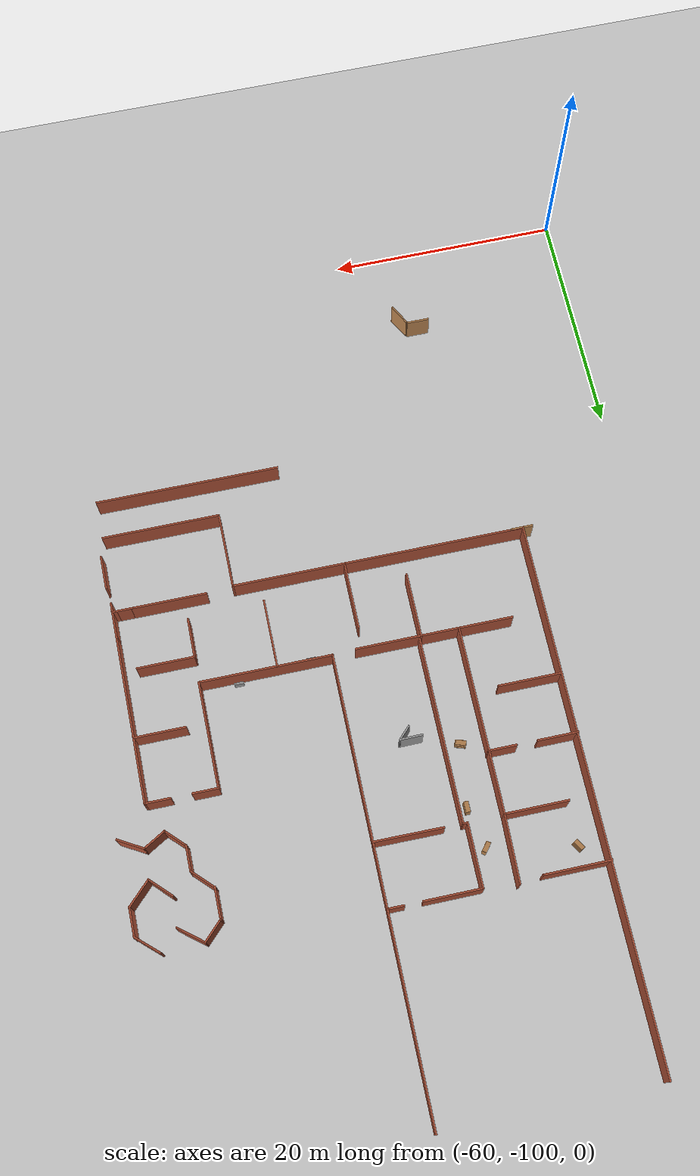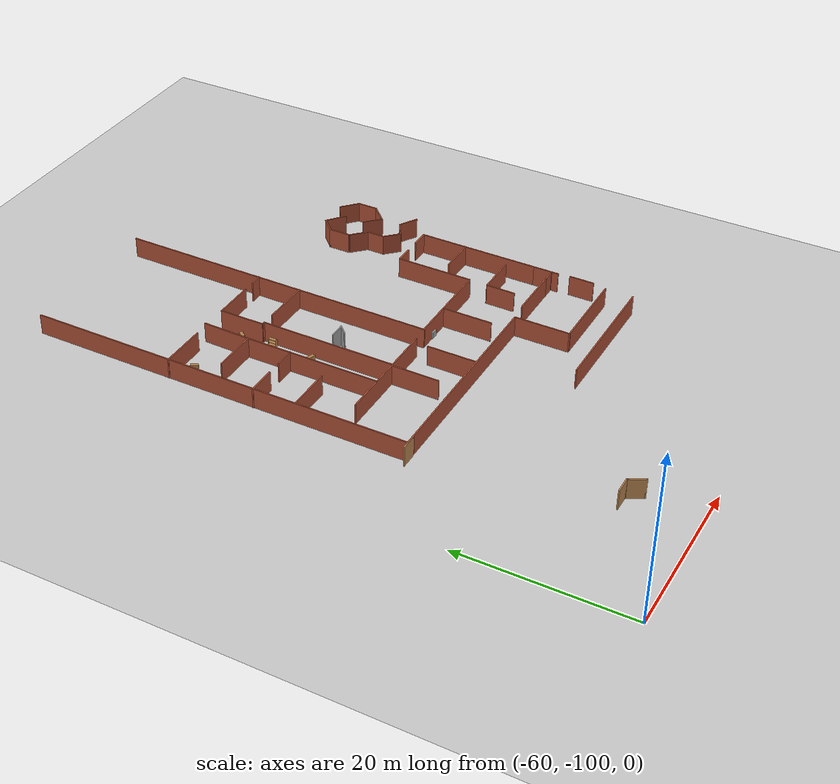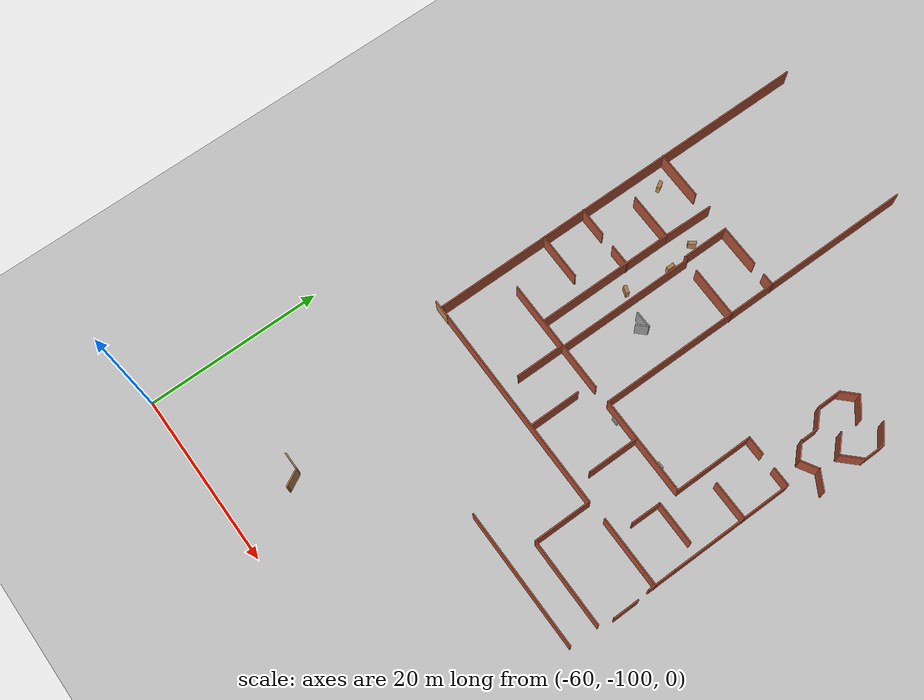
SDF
<sdf version="1.6">
 <world name="default">
  <model name="maze_rect_3">
   <pose>4e-06 -9.9e-05 0 0 -0 1.57001</pose>
   <link name="Wall_42">
    <collision name="Wall_42_Collision">
     <geometry><box><size>2.5 0.15 2.5</size></box></geometry>
     <pose>0 0 1.25 0 -0 0</pose>
    </collision>
    <visual name="Wall_42_Visual">
     <pose>0 0 1.25 0 -0 0</pose>
     <geometry><box><size>2.5 0.15 2.5</size></box></geometry>
     <material>
      <script><uri>file://media/materials/scripts/gazebo.material</uri><name>Gazebo/Bricks</name></script>
      <ambient>1 1 1 1</ambient>
     </material>
     <meta><layer>0</layer></meta>
    </visual>
    <pose>-50.6318 12.7072 0 0 -0 1.0472</pose>
   </link>
   <link name="Wall_43">
    <collision name="Wall_43_Collision">
     <geometry><box><size>2.25 0.15 2.5</size></box></geometry>
     <pose>0 0 1.25 0 -0 0</pose>
    </collision>
    <visual name="Wall_43_Visual">
     <pose>0 0 1.25 0 -0 0</pose>
     <geometry><box><size>2.25 0.15 2.5</size></box></geometry>
     <material>
      <script><uri>file://media/materials/scripts/gazebo.material</uri><name>Gazebo/Bricks</name></script>
      <ambient>1 1 1 1</ambient>
     </material>
     <meta><layer>0</layer></meta>
    </visual>
    <pose>-50.5693 14.6341 0 0 -0 2.0944</pose>
   </link>
   <link name="Wall_46">
    <collision name="Wall_46_Collision">
     <geometry><box><size>2.25 0.15 2.5</size></box></geometry>
     <pose>0 0 1.25 0 -0 0</pose>
    </collision>
    <visual name="Wall_46_Visual">
     <pose>0 0 1.25 0 -0 0</pose>
     <geometry><box><size>2.25 0.15 2.5</size></box></geometry>
     <material>
      <script><uri>file://media/materials/scripts/gazebo.material</uri><name>Gazebo/Bricks</name></script>
      <ambient>1 1 1 1</ambient>
     </material>
     <meta><layer>0</layer></meta>
    </visual>
    <pose>-50.3518 16.2859 0 0 -0 0.785398</pose>
   </link>
   <link name="Wall_47">
    <collision name="Wall_47_Collision">
     <geometry><box><size>2.25 0.15 2.5</size></box></geometry>
     <pose>0 0 1.25 0 -0 0</pose>
    </collision>
    <visual name="Wall_47_Visual">
     <pose>0 0 1.25 0 -0 0</pose>
     <geometry><box><size>2.25 0.15 2.5</size></box></geometry>
     <material>
      <script><uri>file://media/materials/scripts/gazebo.material</uri><name>Gazebo/Bricks</name></script>
      <ambient>1 1 1 1</ambient>
     </material>
     <meta><layer>0</layer></meta>
    </visual>
    <pose>-48.5594 17.0283 0 0 -0 0</pose>
   </link>
   <link name="Wall_48">
    <collision name="Wall_48_Collision">
     <geometry><box><size>2.5 0.15 2.5</size></box></geometry>
     <pose>0 0 1.25 0 -0 0</pose>
    </collision>
    <visual name="Wall_48_Visual">
     <pose>0 0 1.25 0 -0 0</pose>
     <geometry><box><size>2.5 0.15 2.5</size></box></geometry>
     <material>
      <script><uri>file://media/materials/scripts/gazebo.material</uri><name>Gazebo/Bricks</name></script>
      <ambient>1 1 1 1</ambient>
     </material>
     <meta><layer>0</layer></meta>
    </visual>
    <pose>-46.6785 17.8592 0 0 -0 0.785398</pose>
   </link>
   <link name="Wall_49">
    <collision name="Wall_49_Collision">
     <geometry><box><size>2.75 0.15 2.5</size></box></geometry>
     <pose>0 0 1.25 0 -0 0</pose>
    </collision>
    <visual name="Wall_49_Visual">
     <pose>0 0 1.25 0 -0 0</pose>
     <geometry><box><size>2.75 0.15 2.5</size></box></geometry>
     <material>
      <script><uri>file://media/materials/scripts/gazebo.material</uri><name>Gazebo/Bricks</name></script>
      <ambient>1 1 1 1</ambient>
     </material>
     <meta><layer>0</layer></meta>
    </visual>
    <pose>-44.5477 18.69 0 0 -0 0</pose>
   </link>
   <link name="Wall_50">
    <collision name="Wall_50_Collision">
     <geometry><box><size>2.25 0.15 2.5</size></box></geometry>
     <pose>0 0 1.25 0 -0 0</pose>
    </collision>
    <visual name="Wall_50_Visual">
     <pose>0 0 1.25 0 -0 0</pose>
     <geometry><box><size>2.25 0.15 2.5</size></box></geometry>
     <material>
      <script><uri>file://media/materials/scripts/gazebo.material</uri><name>Gazebo/Bricks</name></script>
      <ambient>1 1 1 1</ambient>
     </material>
     <meta><layer>0</layer></meta>
    </visual>
    <pose>-42.5052 17.9476 0 0 -0 -0.785398</pose>
   </link>
   <link name="Wall_601">
    <collision name="Wall_601_Collision">
     <geometry><box><size>2.71977 0.15 2.5</size></box></geometry>
     <pose>0 0 1.25 0 -0 0</pose>
    </collision>
    <visual name="Wall_601_Visual">
     <pose>0 0 1.25 0 -0 0</pose>
     <geometry><box><size>2.71977 0.15 2.5</size></box></geometry>
     <material>
      <script><uri>file://media/materials/scripts/gazebo.material</uri><name>Gazebo/Bricks</name></script>
      <ambient>1 1 1 1</ambient>
     </material>
     <meta><layer>0</layer></meta>
    </visual>
    <pose>-42.5636 16.2004 0 0 -0 0.897796</pose>
   </link>
   <link name="Wall_653">
    <collision name="Wall_653_Collision">
     <geometry><box><size>2.5 0.15 2.5</size></box></geometry>
     <pose>0 0 1.25 0 -0 0</pose>
    </collision>
    <visual name="Wall_653_Visual">
     <pose>0 0 1.25 0 -0 0</pose>
     <geometry><box><size>2.5 0.15 2.5</size></box></geometry>
     <material>
      <script><uri>file://media/materials/scripts/gazebo.material</uri><name>Gazebo/Bricks</name></script>
      <ambient>1 1 1 1</ambient>
     </material>
     <meta><layer>0</layer></meta>
    </visual>
    <pose>-46.7121 14.4734 0 0 -0 -2.35619</pose>
   </link>
   <link name="Wall_654">
    <collision name="Wall_654_Collision">
     <geometry><box><size>2.75 0.15 2.5</size></box></geometry>
     <pose>0 0 1.25 0 -0 0</pose>
    </collision>
    <visual name="Wall_654_Visual">
     <pose>0 0 1.25 0 -0 0</pose>
     <geometry><box><size>2.75 0.15 2.5</size></box></geometry>
     <material>
      <script><uri>file://media/materials/scripts/gazebo.material</uri><name>Gazebo/Bricks</name></script>
      <ambient>1 1 1 1</ambient>
     </material>
     <meta><layer>0</layer></meta>
    </visual>
    <pose>-46.6237 12.7233 0 0 -0 -0.785398</pose>
   </link>
   <link name="Wall_655">
    <collision name="Wall_655_Collision">
     <geometry><box><size>2.5 0.15 2.5</size></box></geometry>
     <pose>0 0 1.25 0 -0 0</pose>
    </collision>
    <visual name="Wall_655_Visual">
     <pose>0 0 1.25 0 -0 0</pose>
     <geometry><box><size>2.5 0.15 2.5</size></box></geometry>
     <material>
      <script><uri>file://media/materials/scripts/gazebo.material</uri><name>Gazebo/Bricks</name></script>
      <ambient>1 1 1 1</ambient>
     </material>
     <meta><layer>0</layer></meta>
    </visual>
    <pose>-44.5295 11.804 0 0 -0 0</pose>
   </link>
   <link name="Wall_663">
    <collision name="Wall_663_Collision">
     <geometry><box><size>2.59346 0.15 2.5</size></box></geometry>
     <pose>0 0 1.25 0 -0 0</pose>
    </collision>
    <visual name="Wall_663_Visual">
     <pose>0 0 1.25 0 -0 0</pose>
     <geometry><box><size>2.59346 0.15 2.5</size></box></geometry>
     <material>
      <script><uri>file://media/materials/scripts/gazebo.material</uri><name>Gazebo/Bricks</name></script>
      <ambient>1 1 1 1</ambient>
     </material>
     <meta><layer>0</layer></meta>
    </visual>
    <pose>-42.5351 12.7103 0 0 -0 -2.30593</pose>
   </link>
   <static>1</static>
  </model>
  <model name="map_palace_v2_model_1_0">
   <pose>-3.1e-05 -55 0 0 -0 3.14</pose>
   <link name="Wall_217">
    <collision name="Wall_217_Collision">
     <geometry><box><size>3 0.15 2.5</size></box></geometry>
     <pose>0 0 1.25 0 -0 0</pose>
    </collision>
    <visual name="Wall_217_Visual">
     <pose>0 0 1.25 0 -0 0</pose>
     <geometry><box><size>3 0.15 2.5</size></box></geometry>
     <material>
      <script><uri>file://media/materials/scripts/gazebo.material</uri><name>Gazebo/Bricks</name></script>
      <ambient>1 1 1 1</ambient>
     </material>
     <meta><layer>0</layer></meta>
    </visual>
    <pose>14.2119 19.0059 0 0 -0 1.5708</pose>
   </link>
   <link name="Wall_221">
    <collision name="Wall_221_Collision">
     <geometry><box><size>3.25 0.15 2.5</size></box></geometry>
     <pose>0 0 1.25 0 -0 0</pose>
    </collision>
    <visual name="Wall_221_Visual">
     <pose>0 0 1.25 0 -0 0</pose>
     <geometry><box><size>3.25 0.15 2.5</size></box></geometry>
     <material>
      <script><uri>file://media/materials/scripts/gazebo.material</uri><name>Gazebo/Bricks</name></script>
      <ambient>1 1 1 1</ambient>
     </material>
     <meta><layer>0</layer></meta>
    </visual>
    <pose>14.3807 14.5475 0 0 -0 1.5708</pose>
   </link>
   <link name="Wall_223">
    <collision name="Wall_223_Collision">
     <geometry><box><size>0.5 0.15 2.5</size></box></geometry>
     <pose>0 0 1.25 0 -0 0</pose>
    </collision>
    <visual name="Wall_223_Visual">
     <pose>0 0 1.25 0 -0 0</pose>
     <geometry><box><size>0.5 0.15 2.5</size></box></geometry>
     <material>
      <script><uri>file://media/materials/scripts/gazebo.material</uri><name>Gazebo/Bricks</name></script>
      <ambient>1 1 1 1</ambient>
     </material>
     <meta><layer>0</layer></meta>
    </visual>
    <pose>14.5415 15.308 0 0 -0 0</pose>
   </link>
   <link name="Wall_224">
    <collision name="Wall_224_Collision">
     <geometry><box><size>1.5 0.15 2.5</size></box></geometry>
     <pose>0 0 1.25 0 -0 0</pose>
    </collision>
    <visual name="Wall_224_Visual">
     <pose>0 0 1.25 0 -0 0</pose>
     <geometry><box><size>1.5 0.15 2.5</size></box></geometry>
     <material>
      <script><uri>file://media/materials/scripts/gazebo.material</uri><name>Gazebo/Bricks</name></script>
      <ambient>1 1 1 1</ambient>
     </material>
     <meta><layer>0</layer></meta>
    </visual>
    <pose>15.3915 15.308 0 0 -0 0</pose>
   </link>
   <link name="Wall_225">
    <collision name="Wall_225_Collision">
     <geometry><box><size>6.5 0.15 2.5</size></box></geometry>
     <pose>0 0 1.25 0 -0 0</pose>
    </collision>
    <visual name="Wall_225_Visual">
     <pose>0 0 1.25 0 -0 0</pose>
     <geometry><box><size>6.5 0.15 2.5</size></box></geometry>
     <material>
      <script><uri>file://media/materials/scripts/gazebo.material</uri><name>Gazebo/Bricks</name></script>
      <ambient>1 1 1 1</ambient>
     </material>
     <meta><layer>0</layer></meta>
    </visual>
    <pose>19.2415 15.308 0 0 -0 0</pose>
   </link>
   <link name="Wall_229">
    <collision name="Wall_229_Collision">
     <geometry><box><size>5 0.15 2.5</size></box></geometry>
     <pose>0 0 1.25 0 -0 0</pose>
    </collision>
    <visual name="Wall_229_Visual">
     <pose>0 0 1.25 0 -0 0</pose>
     <geometry><box><size>5 0.15 2.5</size></box></geometry>
     <material>
      <script><uri>file://media/materials/scripts/gazebo.material</uri><name>Gazebo/Bricks</name></script>
      <ambient>1 1 1 1</ambient>
     </material>
     <meta><layer>0</layer></meta>
    </visual>
    <pose>18.0475 9.99625 0 0 -0 3.14159</pose>
   </link>
   <link name="Wall_231">
    <collision name="Wall_231_Collision">
     <geometry><box><size>3.52576 0.15 2.5</size></box></geometry>
     <pose>0 0 1.25 0 -0 0</pose>
    </collision>
    <visual name="Wall_231_Visual">
     <pose>0 0 1.25 0 -0 0</pose>
     <geometry><box><size>3.52576 0.15 2.5</size></box></geometry>
     <material>
      <script><uri>file://media/materials/scripts/gazebo.material</uri><name>Gazebo/Bricks</name></script>
      <ambient>1 1 1 1</ambient>
     </material>
     <meta><layer>0</layer></meta>
    </visual>
    <pose>20.49 11.684 0 0 -0 -1.58116</pose>
   </link>
   <link name="Wall_235">
    <collision name="Wall_235_Collision">
     <geometry><box><size>4.5 0.15 2.5</size></box></geometry>
     <pose>0 0 1.25 0 -0 0</pose>
    </collision>
    <visual name="Wall_235_Visual">
     <pose>0 0 1.25 0 -0 0</pose>
     <geometry><box><size>4.5 0.15 2.5</size></box></geometry>
     <material>
      <script><uri>file://media/materials/scripts/gazebo.material</uri><name>Gazebo/Bricks</name></script>
      <ambient>1 1 1 1</ambient>
     </material>
     <meta><layer>0</layer></meta>
    </visual>
    <pose>16.5435 4.20704 0 0 -0 0</pose>
   </link>
   <link name="Wall_244">
    <collision name="Wall_244_Collision">
     <geometry><box><size>6 0.15 2.5</size></box></geometry>
     <pose>0 0 1.25 0 -0 0</pose>
    </collision>
    <visual name="Wall_244_Visual">
     <pose>0 0 1.25 0 -0 0</pose>
     <geometry><box><size>6 0.15 2.5</size></box></geometry>
     <material>
      <script><uri>file://media/materials/scripts/gazebo.material</uri><name>Gazebo/Bricks</name></script>
      <ambient>1 1 1 1</ambient>
     </material>
     <meta><layer>0</layer></meta>
    </visual>
    <pose>27.0679 10.7157 0 0 -0 1.5708</pose>
   </link>
   <link name="Wall_246">
    <collision name="Wall_246_Collision">
     <geometry><box><size>6 0.15 2.5</size></box></geometry>
     <pose>0 0 1.25 0 -0 0</pose>
    </collision>
    <visual name="Wall_246_Visual">
     <pose>0 0 1.25 0 -0 0</pose>
     <geometry><box><size>6 0.15 2.5</size></box></geometry>
     <material>
      <script><uri>file://media/materials/scripts/gazebo.material</uri><name>Gazebo/Bricks</name></script>
      <ambient>1 1 1 1</ambient>
     </material>
     <meta><layer>0</layer></meta>
    </visual>
    <pose>34.4057 12.5718 0 0 -0 -1.5708</pose>
   </link>
   <link name="Wall_249">
    <collision name="Wall_249_Collision">
     <geometry><box><size>5.75 0.15 2.5</size></box></geometry>
     <pose>0 0 1.25 0 -0 0</pose>
    </collision>
    <visual name="Wall_249_Visual">
     <pose>0 0 1.25 0 -0 0</pose>
     <geometry><box><size>5.75 0.15 2.5</size></box></geometry>
     <material>
      <script><uri>file://media/materials/scripts/gazebo.material</uri><name>Gazebo/Bricks</name></script>
      <ambient>1 1 1 1</ambient>
     </material>
     <meta><layer>0</layer></meta>
    </visual>
    <pose>39.3766 10.6453 0 0 -0 -1.5708</pose>
   </link>
   <link name="Wall_250">
    <collision name="Wall_250_Collision">
     <geometry><box><size>5.75 0.15 2.5</size></box></geometry>
     <pose>0 0 1.25 0 -0 0</pose>
    </collision>
    <visual name="Wall_250_Visual">
     <pose>0 0 1.25 0 -0 0</pose>
     <geometry><box><size>5.75 0.15 2.5</size></box></geometry>
     <material>
      <script><uri>file://media/materials/scripts/gazebo.material</uri><name>Gazebo/Bricks</name></script>
      <ambient>1 1 1 1</ambient>
     </material>
     <meta><layer>0</layer></meta>
    </visual>
    <pose>36.5766 7.84533 0 0 -0 3.14159</pose>
   </link>
   <link name="Wall_252">
    <collision name="Wall_252_Collision">
     <geometry><box><size>8 0.15 2.5</size></box></geometry>
     <pose>0 0 1.25 0 -0 0</pose>
    </collision>
    <visual name="Wall_252_Visual">
     <pose>0 0 1.25 0 -0 0</pose>
     <geometry><box><size>8 0.15 2.5</size></box></geometry>
     <material>
      <script><uri>file://media/materials/scripts/gazebo.material</uri><name>Gazebo/Bricks</name></script>
      <ambient>1 1 1 1</ambient>
     </material>
     <meta><layer>0</layer></meta>
    </visual>
    <pose>43.3016 7.84533 0 0 -0 0</pose>
   </link>
   <link name="Wall_254">
    <collision name="Wall_254_Collision">
     <geometry><box><size>16.25 0.15 2.5</size></box></geometry>
     <pose>0 0 1.25 0 -0 0</pose>
    </collision>
    <visual name="Wall_254_Visual">
     <pose>0 0 1.25 0 -0 0</pose>
     <geometry><box><size>16.25 0.15 2.5</size></box></geometry>
     <material>
      <script><uri>file://media/materials/scripts/gazebo.material</uri><name>Gazebo/Bricks</name></script>
      <ambient>1 1 1 1</ambient>
     </material>
     <meta><layer>0</layer></meta>
    </visual>
    <pose>42.6348 -0.208459 0 0 -0 -1.5708</pose>
   </link>
   <link name="Wall_256">
    <collision name="Wall_256_Collision">
     <geometry><box><size>16.0526 0.15 2.5</size></box></geometry>
     <pose>0 0 1.25 0 -0 0</pose>
    </collision>
    <visual name="Wall_256_Visual">
     <pose>0 0 1.25 0 -0 0</pose>
     <geometry><box><size>16.0526 0.15 2.5</size></box></geometry>
     <material>
      <script><uri>file://media/materials/scripts/gazebo.material</uri><name>Gazebo/Bricks</name></script>
      <ambient>1 1 1 1</ambient>
     </material>
     <meta><layer>0</layer></meta>
    </visual>
    <pose>39.1948 -0.349759 0 0 -0 -1.5708</pose>
   </link>
   <link name="Wall_258">
    <collision name="Wall_258_Collision">
     <geometry><box><size>5.5 0.15 2.5</size></box></geometry>
     <pose>0 0 1.25 0 -0 0</pose>
    </collision>
    <visual name="Wall_258_Visual">
     <pose>0 0 1.25 0 -0 0</pose>
     <geometry><box><size>5.5 0.15 2.5</size></box></geometry>
     <material>
      <script><uri>file://media/materials/scripts/gazebo.material</uri><name>Gazebo/Bricks</name></script>
      <ambient>1 1 1 1</ambient>
     </material>
     <meta><layer>0</layer></meta>
    </visual>
    <pose>47.3998 2.24154 0 0 -0 3.14159</pose>
   </link>
   <link name="Wall_26">
    <collision name="Wall_26_Collision">
     <geometry><box><size>14.5 0.15 2.5</size></box></geometry>
     <pose>0 0 1.25 0 -0 0</pose>
    </collision>
    <visual name="Wall_26_Visual">
     <pose>0 0 1.25 0 -0 0</pose>
     <geometry><box><size>14.5 0.15 2.5</size></box></geometry>
     <material>
      <script><uri>file://media/materials/scripts/gazebo.material</uri><name>Gazebo/Bricks</name></script>
      <ambient>1 1 1 1</ambient>
     </material>
     <meta><layer>0</layer></meta>
    </visual>
    <pose>14.3807 5.82246 0 0 -0 -1.5708</pose>
   </link>
   <link name="Wall_264">
    <collision name="Wall_264_Collision">
     <geometry><box><size>2.5 0.15 2.5</size></box></geometry>
     <pose>0 0 1.25 0 -0 0</pose>
    </collision>
    <visual name="Wall_264_Visual">
     <pose>0 0 1.25 0 -0 0</pose>
     <geometry><box><size>2.5 0.15 2.5</size></box></geometry>
     <material>
      <script><uri>file://media/materials/scripts/gazebo.material</uri><name>Gazebo/Bricks</name></script>
      <ambient>1 1 1 1</ambient>
     </material>
     <meta><layer>0</layer></meta>
    </visual>
    <pose>43.7673 -2.92852 0 0 -0 0</pose>
   </link>
   <link name="Wall_266">
    <collision name="Wall_266_Collision">
     <geometry><box><size>3.5 0.15 2.5</size></box></geometry>
     <pose>0 0 1.25 0 -0 0</pose>
    </collision>
    <visual name="Wall_266_Visual">
     <pose>0 0 1.25 0 -0 0</pose>
     <geometry><box><size>3.5 0.15 2.5</size></box></geometry>
     <material>
      <script><uri>file://media/materials/scripts/gazebo.material</uri><name>Gazebo/Bricks</name></script>
      <ambient>1 1 1 1</ambient>
     </material>
     <meta><layer>0</layer></meta>
    </visual>
    <pose>48.4673 -2.92852 0 0 -0 0</pose>
   </link>
   <link name="Wall_27">
    <collision name="Wall_27_Collision">
     <geometry><box><size>2.25 0.15 2.5</size></box></geometry>
     <pose>0 0 1.25 0 -0 0</pose>
    </collision>
    <visual name="Wall_27_Visual">
     <pose>0 0 1.25 0 -0 0</pose>
     <geometry><box><size>2.25 0.15 2.5</size></box></geometry>
     <material>
      <script><uri>file://media/materials/scripts/gazebo.material</uri><name>Gazebo/Bricks</name></script>
      <ambient>1 1 1 1</ambient>
     </material>
     <meta><layer>0</layer></meta>
    </visual>
    <pose>15.4307 -1.35254 0 0 -0 0</pose>
   </link>
   <link name="Wall_29">
    <collision name="Wall_29_Collision">
     <geometry><box><size>2.25 0.15 2.5</size></box></geometry>
     <pose>0 0 1.25 0 -0 0</pose>
    </collision>
    <visual name="Wall_29_Visual">
     <pose>0 0 1.25 0 -0 0</pose>
     <geometry><box><size>2.25 0.15 2.5</size></box></geometry>
     <material>
      <script><uri>file://media/materials/scripts/gazebo.material</uri><name>Gazebo/Bricks</name></script>
      <ambient>1 1 1 1</ambient>
     </material>
     <meta><layer>0</layer></meta>
    </visual>
    <pose>19.3807 -1.35254 0 0 -0 0</pose>
   </link>
   <link name="Wall_291">
    <collision name="Wall_291_Collision">
     <geometry><box><size>5 0.15 2.5</size></box></geometry>
     <pose>0 0 1.25 0 -0 0</pose>
    </collision>
    <visual name="Wall_291_Visual">
     <pose>0 0 1.25 0 -0 0</pose>
     <geometry><box><size>5 0.15 2.5</size></box></geometry>
     <material>
      <script><uri>file://media/materials/scripts/gazebo.material</uri><name>Gazebo/Bricks</name></script>
      <ambient>1 1 1 1</ambient>
     </material>
     <meta><layer>0</layer></meta>
    </visual>
    <pose>37.1319 -13.6851 0 0 -0 3.14159</pose>
   </link>
   <link name="Wall_293">
    <collision name="Wall_293_Collision">
     <geometry><box><size>1.5 0.15 2.5</size></box></geometry>
     <pose>0 0 1.25 0 -0 0</pose>
    </collision>
    <visual name="Wall_293_Visual">
     <pose>0 0 1.25 0 -0 0</pose>
     <geometry><box><size>1.5 0.15 2.5</size></box></geometry>
     <material>
      <script><uri>file://media/materials/scripts/gazebo.material</uri><name>Gazebo/Bricks</name></script>
      <ambient>1 1 1 1</ambient>
     </material>
     <meta><layer>0</layer></meta>
    </visual>
    <pose>32.4319 -13.6851 0 0 -0 3.14159</pose>
   </link>
   <link name="Wall_295">
    <collision name="Wall_295_Collision">
     <geometry><box><size>5.5 0.15 2.5</size></box></geometry>
     <pose>0 0 1.25 0 -0 0</pose>
    </collision>
    <visual name="Wall_295_Visual">
     <pose>0 0 1.25 0 -0 0</pose>
     <geometry><box><size>5.5 0.15 2.5</size></box></geometry>
     <material>
      <script><uri>file://media/materials/scripts/gazebo.material</uri><name>Gazebo/Bricks</name></script>
      <ambient>1 1 1 1</ambient>
     </material>
     <meta><layer>0</layer></meta>
    </visual>
    <pose>39.5569 -11.01 0 0 -0 1.5708</pose>
   </link>
   <link name="Wall_296">
    <collision name="Wall_296_Collision">
     <geometry><box><size>0.513653 0.15 2.5</size></box></geometry>
     <pose>0 0 1.25 0 -0 0</pose>
    </collision>
    <visual name="Wall_296_Visual">
     <pose>0 0 1.25 0 -0 0</pose>
     <geometry><box><size>0.513653 0.15 2.5</size></box></geometry>
     <material>
      <script><uri>file://media/materials/scripts/gazebo.material</uri><name>Gazebo/Bricks</name></script>
      <ambient>1 1 1 1</ambient>
     </material>
     <meta><layer>0</layer></meta>
    </visual>
    <pose>39.3759 -8.31805 0 0 -0 3.04799</pose>
   </link>
   <link name="Wall_298">
    <collision name="Wall_298_Collision">
     <geometry><box><size>6 0.15 2.5</size></box></geometry>
     <pose>0 0 1.25 0 -0 0</pose>
    </collision>
    <visual name="Wall_298_Visual">
     <pose>0 0 1.25 0 -0 0</pose>
     <geometry><box><size>6 0.15 2.5</size></box></geometry>
     <material>
      <script><uri>file://media/materials/scripts/gazebo.material</uri><name>Gazebo/Bricks</name></script>
      <ambient>1 1 1 1</ambient>
     </material>
     <meta><layer>0</layer></meta>
    </visual>
    <pose>34.6698 -8.27476 0 0 -0 3.1326</pose>
   </link>
   <link name="Wall_30">
    <collision name="Wall_30_Collision">
     <geometry><box><size>9.25 0.15 2.5</size></box></geometry>
     <pose>0 0 1.25 0 -0 0</pose>
    </collision>
    <visual name="Wall_30_Visual">
     <pose>0 0 1.25 0 -0 0</pose>
     <geometry><box><size>9.25 0.15 2.5</size></box></geometry>
     <material>
      <script><uri>file://media/materials/scripts/gazebo.material</uri><name>Gazebo/Bricks</name></script>
      <ambient>1 1 1 1</ambient>
     </material>
     <meta><layer>0</layer></meta>
    </visual>
    <pose>20.4307 3.19746 0 0 -0 1.5708</pose>
   </link>
   <link name="Wall_304">
    <collision name="Wall_304_Collision">
     <geometry><box><size>5.8416 0.15 2.5</size></box></geometry>
     <pose>0 0 1.25 0 -0 0</pose>
    </collision>
    <visual name="Wall_304_Visual">
     <pose>0 0 1.25 0 -0 0</pose>
     <geometry><box><size>5.8416 0.15 2.5</size></box></geometry>
     <material>
      <script><uri>file://media/materials/scripts/gazebo.material</uri><name>Gazebo/Bricks</name></script>
      <ambient>1 1 1 1</ambient>
     </material>
     <meta><layer>0</layer></meta>
    </visual>
    <pose>42.5686 -11.1035 0 0 -0 1.54752</pose>
   </link>
   <link name="Wall_308">
    <collision name="Wall_308_Collision">
     <geometry><box><size>5.75 0.15 2.5</size></box></geometry>
     <pose>0 0 1.25 0 -0 0</pose>
    </collision>
    <visual name="Wall_308_Visual">
     <pose>0 0 1.25 0 -0 0</pose>
     <geometry><box><size>5.75 0.15 2.5</size></box></geometry>
     <material>
      <script><uri>file://media/materials/scripts/gazebo.material</uri><name>Gazebo/Bricks</name></script>
      <ambient>1 1 1 1</ambient>
     </material>
     <meta><layer>0</layer></meta>
    </visual>
    <pose>47.3327 -13.6615 0 0 -0 3.14159</pose>
   </link>
   <link name="Wall_31">
    <collision name="Wall_31_Collision">
     <geometry><box><size>11.5 0.15 2.5</size></box></geometry>
     <pose>0 0 1.25 0 -0 0</pose>
    </collision>
    <visual name="Wall_31_Visual">
     <pose>0 0 1.25 0 -0 0</pose>
     <geometry><box><size>11.5 0.15 2.5</size></box></geometry>
     <material>
      <script><uri>file://media/materials/scripts/gazebo.material</uri><name>Gazebo/Bricks</name></script>
      <ambient>1 1 1 1</ambient>
     </material>
     <meta><layer>0</layer></meta>
    </visual>
    <pose>26.1057 7.74746 0 0 -0 0</pose>
   </link>
   <link name="Wall_310">
    <collision name="Wall_310_Collision">
     <geometry><box><size>5.5 0.15 2.5</size></box></geometry>
     <pose>0 0 1.25 0 -0 0</pose>
    </collision>
    <visual name="Wall_310_Visual">
     <pose>0 0 1.25 0 -0 0</pose>
     <geometry><box><size>5.5 0.15 2.5</size></box></geometry>
     <material>
      <script><uri>file://media/materials/scripts/gazebo.material</uri><name>Gazebo/Bricks</name></script>
      <ambient>1 1 1 1</ambient>
     </material>
     <meta><layer>0</layer></meta>
    </visual>
    <pose>45.3098 -8.25846 0 0 -0 0</pose>
   </link>
   <link name="Wall_32">
    <collision name="Wall_32_Collision">
     <geometry><box><size>38.75 0.15 2.5</size></box></geometry>
     <pose>0 0 1.25 0 -0 0</pose>
    </collision>
    <visual name="Wall_32_Visual">
     <pose>0 0 1.25 0 -0 0</pose>
     <geometry><box><size>38.75 0.15 2.5</size></box></geometry>
     <material>
      <script><uri>file://media/materials/scripts/gazebo.material</uri><name>Gazebo/Bricks</name></script>
      <ambient>1 1 1 1</ambient>
     </material>
     <meta><layer>0</layer></meta>
    </visual>
    <pose>31.7807 -11.5525 0 0 -0 -1.5708</pose>
   </link>
   <link name="Wall_36">
    <collision name="Wall_36_Collision">
     <geometry><box><size>46.5 0.15 2.5</size></box></geometry>
     <pose>0 0 1.25 0 -0 0</pose>
    </collision>
    <visual name="Wall_36_Visual">
     <pose>0 0 1.25 0 -0 0</pose>
     <geometry><box><size>46.5 0.15 2.5</size></box></geometry>
     <material>
      <script><uri>file://media/materials/scripts/gazebo.material</uri><name>Gazebo/Bricks</name></script>
      <ambient>1 1 1 1</ambient>
     </material>
     <meta><layer>0</layer></meta>
    </visual>
    <pose>50.0807 -7.67754 0 0 -0 1.5708</pose>
   </link>
   <link name="Wall_37">
    <collision name="Wall_37_Collision">
     <geometry><box><size>25.5 0.15 2.5</size></box></geometry>
     <pose>0 0 1.25 0 -0 0</pose>
    </collision>
    <visual name="Wall_37_Visual">
     <pose>0 0 1.25 0 -0 0</pose>
     <geometry><box><size>25.5 0.15 2.5</size></box></geometry>
     <material>
      <script><uri>file://media/materials/scripts/gazebo.material</uri><name>Gazebo/Bricks</name></script>
      <ambient>1 1 1 1</ambient>
     </material>
     <meta><layer>0</layer></meta>
    </visual>
    <pose>37.4057 15.4975 0 0 -0 3.14159</pose>
   </link>
   <link name="Wall_38">
    <collision name="Wall_38_Collision">
     <geometry><box><size>6.75 0.15 2.5</size></box></geometry>
     <pose>0 0 1.25 0 -0 0</pose>
    </collision>
    <visual name="Wall_38_Visual">
     <pose>0 0 1.25 0 -0 0</pose>
     <geometry><box><size>6.75 0.15 2.5</size></box></geometry>
     <material>
      <script><uri>file://media/materials/scripts/gazebo.material</uri><name>Gazebo/Bricks</name></script>
      <ambient>1 1 1 1</ambient>
     </material>
     <meta><layer>0</layer></meta>
    </visual>
    <pose>24.7307 18.7975 0 0 -0 1.5708</pose>
   </link>
   <link name="Wall_39">
    <collision name="Wall_39_Collision">
     <geometry><box><size>10.25 0.15 2.5</size></box></geometry>
     <pose>0 0 1.25 0 -0 0</pose>
    </collision>
    <visual name="Wall_39_Visual">
     <pose>0 0 1.25 0 -0 0</pose>
     <geometry><box><size>10.25 0.15 2.5</size></box></geometry>
     <material>
      <script><uri>file://media/materials/scripts/gazebo.material</uri><name>Gazebo/Bricks</name></script>
      <ambient>1 1 1 1</ambient>
     </material>
     <meta><layer>0</layer></meta>
    </visual>
    <pose>19.6807 22.0975 0 0 -0 3.14159</pose>
   </link>
   <link name="Wall_47">
    <collision name="Wall_47_Collision">
     <geometry><box><size>16 0.15 2.5</size></box></geometry>
     <pose>0 0 1.25 0 -0 0</pose>
    </collision>
    <visual name="Wall_47_Visual">
     <pose>0 0 1.25 0 -0 0</pose>
     <geometry><box><size>16 0.15 2.5</size></box></geometry>
     <material>
      <script><uri>file://media/materials/scripts/gazebo.material</uri><name>Gazebo/Bricks</name></script>
      <ambient>1 1 1 1</ambient>
     </material>
     <meta><layer>0</layer></meta>
    </visual>
    <pose>22.5557 25.4475 0 0 -0 0</pose>
   </link>
   <link name="Window_8">
    <collision name="Window_8_Collision">
     <geometry><box><size>0.8 0.17 0.8</size></box></geometry>
     <pose>0 0 0.4 0 -0 0</pose>
    </collision>
    <visual name="Window_8_Visual">
     <pose>0 0 0.4 0 -0 0</pose>
     <geometry><box><size>0.8 0.17 0.8</size></box></geometry>
     <material>
      <script><uri>file://media/materials/scripts/gazebo.material</uri><name>Gazebo/Grey</name></script>
     </material>
    </visual>
    <pose>23.6652 7.30334 0.5 0 -0 0</pose>
   </link>
   <link name="Window_9">
    <collision name="Window_9_Collision">
     <geometry><box><size>0.8 0.17 0.8</size></box></geometry>
     <pose>0 0 0.4 0 -0 0</pose>
    </collision>
    <visual name="Window_9_Visual">
     <pose>0 0 0.4 0 -0 0</pose>
     <geometry><box><size>0.8 0.17 0.8</size></box></geometry>
     <material>
      <script><uri>file://media/materials/scripts/gazebo.material</uri><name>Gazebo/Grey</name></script>
     </material>
    </visual>
    <pose>30.0132 8.14974 0.5 0 -0 0</pose>
   </link>
   <static>1</static>
  </model>
  <model name="bookshelf">
   <static>1</static>
   <link name="link">
    <inertial><mass>1</mass></inertial>
    <collision name="back">
     <pose>0 0.005 0.6 0 -0 0</pose>
     <geometry><box><size>0.9 0.01 1.2</size></box></geometry>
    </collision>
    <visual name="visual1">
     <pose>0 0.005 0.6 0 -0 0</pose>
     <geometry><box><size>0.9 0.01 1.2</size></box></geometry>
     <material>
      <script><uri>file://media/materials/scripts/gazebo.material</uri><name>Gazebo/Wood</name></script>
     </material>
    </visual>
    <collision name="left_side">
     <pose>0.45 -0.195 0.6 0 -0 0</pose>
     <geometry><box><size>0.02 0.4 1.2</size></box></geometry>
    </collision>
    <visual name="visual2">
     <pose>0.45 -0.195 0.6 0 -0 0</pose>
     <geometry><box><size>0.02 0.4 1.2</size></box></geometry>
     <material>
      <script><uri>file://media/materials/scripts/gazebo.material</uri><name>Gazebo/Wood</name></script>
     </material>
    </visual>
    <collision name="right_side">
     <pose>-0.45 -0.195 0.6 0 -0 0</pose>
     <geometry><box><size>0.02 0.4 1.2</size></box></geometry>
    </collision>
    <visual name="visual3">
     <pose>-0.45 -0.195 0.6 0 -0 0</pose>
     <geometry><box><size>0.02 0.4 1.2</size></box></geometry>
     <material>
      <script><uri>file://media/materials/scripts/gazebo.material</uri><name>Gazebo/Wood</name></script>
     </material>
    </visual>
    <collision name="bottom">
     <pose>0 -0.195 0.03 0 -0 0</pose>
     <geometry><box><size>0.88 0.4 0.06</size></box></geometry>
    </collision>
    <visual name="visual4">
     <pose>0 -0.195 0.03 0 -0 0</pose>
     <geometry><box><size>0.88 0.4 0.06</size></box></geometry>
     <material>
      <script><uri>file://media/materials/scripts/gazebo.material</uri><name>Gazebo/Wood</name></script>
     </material>
    </visual>
    <collision name="top">
     <pose>0 -0.195 1.19 0 -0 0</pose>
     <geometry><box><size>0.88 0.4 0.02</size></box></geometry>
    </collision>
    <visual name="visual5">
     <pose>0 -0.195 1.19 0 -0 0</pose>
     <geometry><box><size>0.88 0.4 0.02</size></box></geometry>
     <material>
      <script><uri>file://media/materials/scripts/gazebo.material</uri><name>Gazebo/Wood</name></script>
     </material>
    </visual>
    <collision name="low_shelf">
     <pose>0 -0.195 0.43 0 -0 0</pose>
     <geometry><box><size>0.88 0.4 0.02</size></box></geometry>
    </collision>
    <visual name="visual6">
     <pose>0 -0.195 0.43 0 -0 0</pose>
     <geometry><box><size>0.88 0.4 0.02</size></box></geometry>
     <material>
      <script><uri>file://media/materials/scripts/gazebo.material</uri><name>Gazebo/Wood</name></script>
     </material>
    </visual>
    <collision name="high_shelf">
     <pose>0 -0.195 0.8 0 -0 0</pose>
     <geometry><box><size>0.88 0.4 0.02</size></box></geometry>
    </collision>
    <visual name="visual7">
     <pose>0 -0.195 0.8 0 -0 0</pose>
     <geometry><box><size>0.88 0.4 0.02</size></box></geometry>
     <material>
      <script><uri>file://media/materials/scripts/gazebo.material</uri><name>Gazebo/Wood</name></script>
     </material>
    </visual>
   </link>
   <pose>-48.2631 -43.2649 0 0 -0 2.08673</pose>
  </model>
  <model name="bookshelf_clone">
   <static>1</static>
   <link name="link">
    <inertial><mass>1</mass></inertial>
    <collision name="back">
     <pose>0 0.005 0.6 0 -0 0</pose>
     <geometry><box><size>0.9 0.01 1.2</size></box></geometry>
    </collision>
    <visual name="visual1">
     <pose>0 0.005 0.6 0 -0 0</pose>
     <geometry><box><size>0.9 0.01 1.2</size></box></geometry>
     <material>
      <script><uri>file://media/materials/scripts/gazebo.material</uri><name>Gazebo/Wood</name></script>
     </material>
    </visual>
    <collision name="left_side">
     <pose>0.45 -0.195 0.6 0 -0 0</pose>
     <geometry><box><size>0.02 0.4 1.2</size></box></geometry>
    </collision>
    <visual name="visual2">
     <pose>0.45 -0.195 0.6 0 -0 0</pose>
     <geometry><box><size>0.02 0.4 1.2</size></box></geometry>
     <material>
      <script><uri>file://media/materials/scripts/gazebo.material</uri><name>Gazebo/Wood</name></script>
     </material>
    </visual>
    <collision name="right_side">
     <pose>-0.45 -0.195 0.6 0 -0 0</pose>
     <geometry><box><size>0.02 0.4 1.2</size></box></geometry>
    </collision>
    <visual name="visual3">
     <pose>-0.45 -0.195 0.6 0 -0 0</pose>
     <geometry><box><size>0.02 0.4 1.2</size></box></geometry>
     <material>
      <script><uri>file://media/materials/scripts/gazebo.material</uri><name>Gazebo/Wood</name></script>
     </material>
    </visual>
    <collision name="bottom">
     <pose>0 -0.195 0.03 0 -0 0</pose>
     <geometry><box><size>0.88 0.4 0.06</size></box></geometry>
    </collision>
    <visual name="visual4">
     <pose>0 -0.195 0.03 0 -0 0</pose>
     <geometry><box><size>0.88 0.4 0.06</size></box></geometry>
     <material>
      <script><uri>file://media/materials/scripts/gazebo.material</uri><name>Gazebo/Wood</name></script>
     </material>
    </visual>
    <collision name="top">
     <pose>0 -0.195 1.19 0 -0 0</pose>
     <geometry><box><size>0.88 0.4 0.02</size></box></geometry>
    </collision>
    <visual name="visual5">
     <pose>0 -0.195 1.19 0 -0 0</pose>
     <geometry><box><size>0.88 0.4 0.02</size></box></geometry>
     <material>
      <script><uri>file://media/materials/scripts/gazebo.material</uri><name>Gazebo/Wood</name></script>
     </material>
    </visual>
    <collision name="low_shelf">
     <pose>0 -0.195 0.43 0 -0 0</pose>
     <geometry><box><size>0.88 0.4 0.02</size></box></geometry>
    </collision>
    <visual name="visual6">
     <pose>0 -0.195 0.43 0 -0 0</pose>
     <geometry><box><size>0.88 0.4 0.02</size></box></geometry>
     <material>
      <script><uri>file://media/materials/scripts/gazebo.material</uri><name>Gazebo/Wood</name></script>
     </material>
    </visual>
    <collision name="high_shelf">
     <pose>0 -0.195 0.8 0 -0 0</pose>
     <geometry><box><size>0.88 0.4 0.02</size></box></geometry>
    </collision>
    <visual name="visual7">
     <pose>0 -0.195 0.8 0 -0 0</pose>
     <geometry><box><size>0.88 0.4 0.02</size></box></geometry>
     <material>
      <script><uri>file://media/materials/scripts/gazebo.material</uri><name>Gazebo/Wood</name></script>
     </material>
    </visual>
   </link>
   <pose>-40.7205 -53.6243 0 0 -0 2.8249</pose>
  </model>
  <model name="bookshelf_clone_1_clone_clone">
   <static>1</static>
   <link name="link">
    <inertial><mass>1</mass></inertial>
    <collision name="back">
     <pose>0 0.005 0.6 0 -0 0</pose>
     <geometry><box><size>0.9 0.01 1.2</size></box></geometry>
    </collision>
    <visual name="visual1">
     <pose>0 0.005 0.6 0 -0 0</pose>
     <geometry><box><size>0.9 0.01 1.2</size></box></geometry>
     <material>
      <script><uri>file://media/materials/scripts/gazebo.material</uri><name>Gazebo/Wood</name></script>
     </material>
    </visual>
    <collision name="left_side">
     <pose>0.45 -0.195 0.6 0 -0 0</pose>
     <geometry><box><size>0.02 0.4 1.2</size></box></geometry>
    </collision>
    <visual name="visual2">
     <pose>0.45 -0.195 0.6 0 -0 0</pose>
     <geometry><box><size>0.02 0.4 1.2</size></box></geometry>
     <material>
      <script><uri>file://media/materials/scripts/gazebo.material</uri><name>Gazebo/Wood</name></script>
     </material>
    </visual>
    <collision name="right_side">
     <pose>-0.45 -0.195 0.6 0 -0 0</pose>
     <geometry><box><size>0.02 0.4 1.2</size></box></geometry>
    </collision>
    <visual name="visual3">
     <pose>-0.45 -0.195 0.6 0 -0 0</pose>
     <geometry><box><size>0.02 0.4 1.2</size></box></geometry>
     <material>
      <script><uri>file://media/materials/scripts/gazebo.material</uri><name>Gazebo/Wood</name></script>
     </material>
    </visual>
    <collision name="bottom">
     <pose>0 -0.195 0.03 0 -0 0</pose>
     <geometry><box><size>0.88 0.4 0.06</size></box></geometry>
    </collision>
    <visual name="visual4">
     <pose>0 -0.195 0.03 0 -0 0</pose>
     <geometry><box><size>0.88 0.4 0.06</size></box></geometry>
     <material>
      <script><uri>file://media/materials/scripts/gazebo.material</uri><name>Gazebo/Wood</name></script>
     </material>
    </visual>
    <collision name="top">
     <pose>0 -0.195 1.19 0 -0 0</pose>
     <geometry><box><size>0.88 0.4 0.02</size></box></geometry>
    </collision>
    <visual name="visual5">
     <pose>0 -0.195 1.19 0 -0 0</pose>
     <geometry><box><size>0.88 0.4 0.02</size></box></geometry>
     <material>
      <script><uri>file://media/materials/scripts/gazebo.material</uri><name>Gazebo/Wood</name></script>
     </material>
    </visual>
    <collision name="low_shelf">
     <pose>0 -0.195 0.43 0 -0 0</pose>
     <geometry><box><size>0.88 0.4 0.02</size></box></geometry>
    </collision>
    <visual name="visual6">
     <pose>0 -0.195 0.43 0 -0 0</pose>
     <geometry><box><size>0.88 0.4 0.02</size></box></geometry>
     <material>
      <script><uri>file://media/materials/scripts/gazebo.material</uri><name>Gazebo/Wood</name></script>
     </material>
    </visual>
    <collision name="high_shelf">
     <pose>0 -0.195 0.8 0 -0 0</pose>
     <geometry><box><size>0.88 0.4 0.02</size></box></geometry>
    </collision>
    <visual name="visual7">
     <pose>0 -0.195 0.8 0 -0 0</pose>
     <geometry><box><size>0.88 0.4 0.02</size></box></geometry>
     <material>
      <script><uri>file://media/materials/scripts/gazebo.material</uri><name>Gazebo/Wood</name></script>
     </material>
    </visual>
   </link>
   <pose>-39.7343 -48.1036 0 0 0 -1.56613</pose>
  </model>
  <model name="bookshelf_clone_1_clone_clone_0">
   <static>1</static>
   <link name="link">
    <inertial><mass>1</mass></inertial>
    <collision name="back">
     <pose>0 0.005 0.6 0 -0 0</pose>
     <geometry><box><size>0.9 0.01 1.2</size></box></geometry>
    </collision>
    <visual name="visual1">
     <pose>0 0.005 0.6 0 -0 0</pose>
     <geometry><box><size>0.9 0.01 1.2</size></box></geometry>
     <material>
      <script><uri>file://media/materials/scripts/gazebo.material</uri><name>Gazebo/Wood</name></script>
     </material>
    </visual>
    <collision name="left_side">
     <pose>0.45 -0.195 0.6 0 -0 0</pose>
     <geometry><box><size>0.02 0.4 1.2</size></box></geometry>
    </collision>
    <visual name="visual2">
     <pose>0.45 -0.195 0.6 0 -0 0</pose>
     <geometry><box><size>0.02 0.4 1.2</size></box></geometry>
     <material>
      <script><uri>file://media/materials/scripts/gazebo.material</uri><name>Gazebo/Wood</name></script>
     </material>
    </visual>
    <collision name="right_side">
     <pose>-0.45 -0.195 0.6 0 -0 0</pose>
     <geometry><box><size>0.02 0.4 1.2</size></box></geometry>
    </collision>
    <visual name="visual3">
     <pose>-0.45 -0.195 0.6 0 -0 0</pose>
     <geometry><box><size>0.02 0.4 1.2</size></box></geometry>
     <material>
      <script><uri>file://media/materials/scripts/gazebo.material</uri><name>Gazebo/Wood</name></script>
     </material>
    </visual>
    <collision name="bottom">
     <pose>0 -0.195 0.03 0 -0 0</pose>
     <geometry><box><size>0.88 0.4 0.06</size></box></geometry>
    </collision>
    <visual name="visual4">
     <pose>0 -0.195 0.03 0 -0 0</pose>
     <geometry><box><size>0.88 0.4 0.06</size></box></geometry>
     <material>
      <script><uri>file://media/materials/scripts/gazebo.material</uri><name>Gazebo/Wood</name></script>
     </material>
    </visual>
    <collision name="top">
     <pose>0 -0.195 1.19 0 -0 0</pose>
     <geometry><box><size>0.88 0.4 0.02</size></box></geometry>
    </collision>
    <visual name="visual5">
     <pose>0 -0.195 1.19 0 -0 0</pose>
     <geometry><box><size>0.88 0.4 0.02</size></box></geometry>
     <material>
      <script><uri>file://media/materials/scripts/gazebo.material</uri><name>Gazebo/Wood</name></script>
     </material>
    </visual>
    <collision name="low_shelf">
     <pose>0 -0.195 0.43 0 -0 0</pose>
     <geometry><box><size>0.88 0.4 0.02</size></box></geometry>
    </collision>
    <visual name="visual6">
     <pose>0 -0.195 0.43 0 -0 0</pose>
     <geometry><box><size>0.88 0.4 0.02</size></box></geometry>
     <material>
      <script><uri>file://media/materials/scripts/gazebo.material</uri><name>Gazebo/Wood</name></script>
     </material>
    </visual>
    <collision name="high_shelf">
     <pose>0 -0.195 0.8 0 -0 0</pose>
     <geometry><box><size>0.88 0.4 0.02</size></box></geometry>
    </collision>
    <visual name="visual7">
     <pose>0 -0.195 0.8 0 -0 0</pose>
     <geometry><box><size>0.88 0.4 0.02</size></box></geometry>
     <material>
      <script><uri>file://media/materials/scripts/gazebo.material</uri><name>Gazebo/Wood</name></script>
     </material>
    </visual>
   </link>
   <pose>-40.5607 -44.7025 0 0 0 -2.23617</pose>
  </model>
  <model name="wall_4">
   <pose>-45.7143 -91.8618 0 0 -0 0</pose>
   <link name="Wall_2">
    <collision name="Wall_2_Collision">
     <geometry><box><size>2 0.15 2.5</size></box></geometry>
     <pose>0 0 1.25 0 -0 0</pose>
    </collision>
    <visual name="Wall_2_Visual">
     <pose>0 0 1.25 0 -0 0</pose>
     <geometry><box><size>2 0.15 2.5</size></box></geometry>
     <material>
      <script><uri>file://media/materials/scripts/gazebo.material</uri><name>Gazebo/Wood</name></script>
      <ambient>1 1 1 1</ambient>
     </material>
     <meta><layer>0</layer></meta>
    </visual>
    <pose>-0.005 -0 0 0 -0 0</pose>
   </link>
   <link name="Wall_3">
    <collision name="Wall_3_Collision">
     <geometry><box><size>0.16 0.15 2.5</size></box></geometry>
     <pose>0 0 1.25 0 -0 0</pose>
    </collision>
    <visual name="Wall_3_Visual">
     <pose>0 0 1.25 0 -0 0</pose>
     <geometry><box><size>0.16 0.15 2.5</size></box></geometry>
     <material>
      <script><uri>file://media/materials/scripts/gazebo.material</uri><name>Gazebo/Wood</name></script>
      <ambient>1 1 1 1</ambient>
     </material>
     <meta><layer>0</layer></meta>
    </visual>
    <pose>0.925 0 0 0 -0 0</pose>
   </link>
   <static>1</static>
  </model>
  <model name="wall_6">
   <pose>-44.2185 -92.8142 0 0 0 -1.0753</pose>
   <link name="Wall_2">
    <collision name="Wall_2_Collision">
     <geometry><box><size>2 0.15 2.5</size></box></geometry>
     <pose>0 0 1.25 0 -0 0</pose>
    </collision>
    <visual name="Wall_2_Visual">
     <pose>0 0 1.25 0 -0 0</pose>
     <geometry><box><size>2 0.15 2.5</size></box></geometry>
     <material>
      <script><uri>file://media/materials/scripts/gazebo.material</uri><name>Gazebo/Wood</name></script>
      <ambient>1 1 1 1</ambient>
     </material>
     <meta><layer>0</layer></meta>
    </visual>
    <pose>-0.005 -0 0 0 -0 0</pose>
   </link>
   <link name="Wall_3">
    <collision name="Wall_3_Collision">
     <geometry><box><size>0.16 0.15 2.5</size></box></geometry>
     <pose>0 0 1.25 0 -0 0</pose>
    </collision>
    <visual name="Wall_3_Visual">
     <pose>0 0 1.25 0 -0 0</pose>
     <geometry><box><size>0.16 0.15 2.5</size></box></geometry>
     <material>
      <script><uri>file://media/materials/scripts/gazebo.material</uri><name>Gazebo/Wood</name></script>
      <ambient>1 1 1 1</ambient>
     </material>
     <meta><layer>0</layer></meta>
    </visual>
    <pose>0.925 0 0 0 -0 0</pose>
   </link>
   <static>1</static>
  </model>
  <model name="v_wall_2_2">
   <pose>-36.6428 -54.4498 0 0 -0 2.36763</pose>
   <link name="Wall_3">
    <collision name="Wall_3_Collision">
     <geometry><box><size>2 0.15 2.5</size></box></geometry>
     <pose>0 0 1.25 0 -0 0</pose>
    </collision>
    <visual name="Wall_3_Visual">
     <pose>0 0 1.25 0 -0 0</pose>
     <geometry><box><size>2 0.15 2.5</size></box></geometry>
     <material>
      <script><uri>file://media/materials/scripts/gazebo.material</uri><name>Gazebo/Grey</name></script>
      <ambient>1 1 1 1</ambient>
     </material>
     <meta><layer>0</layer></meta>
    </visual>
    <pose>0 -0.005393 0 0 -0 0.785398</pose>
   </link>
   <link name="Wall_5">
    <collision name="Wall_5_Collision">
     <geometry><box><size>1.5 0.15 2.5</size></box></geometry>
     <pose>0 0 1.25 0 -0 0</pose>
    </collision>
    <visual name="Wall_5_Visual">
     <pose>0 0 1.25 0 -0 0</pose>
     <geometry><box><size>1.5 0.15 2.5</size></box></geometry>
     <material>
      <script><uri>file://media/materials/scripts/gazebo.material</uri><name>Gazebo/Grey</name></script>
      <ambient>1 1 1 1</ambient>
     </material>
     <meta><layer>0</layer></meta>
    </visual>
    <pose>-0.654074 0.015533 0 0 -0 1.5708</pose>
   </link>
   <static>1</static>
  </model>
  <model name="wall_23">
   <pose>-49.9911 -70.4607 0 0 -0 0</pose>
   <link name="Wall_2">
    <collision name="Wall_2_Collision">
     <geometry><box><size>2 0.15 2.5</size></box></geometry>
     <pose>0 0 1.25 0 -0 0</pose>
    </collision>
    <visual name="Wall_2_Visual">
     <pose>0 0 1.25 0 -0 0</pose>
     <geometry><box><size>2 0.15 2.5</size></box></geometry>
     <material>
      <script><uri>file://media/materials/scripts/gazebo.material</uri><name>Gazebo/Wood</name></script>
      <ambient>1 1 1 1</ambient>
     </material>
     <meta><layer>0</layer></meta>
    </visual>
    <pose>-0.005 -0 0 0 -0 0</pose>
   </link>
   <link name="Wall_3">
    <collision name="Wall_3_Collision">
     <geometry><box><size>0.16 0.15 2.5</size></box></geometry>
     <pose>0 0 1.25 0 -0 0</pose>
    </collision>
    <visual name="Wall_3_Visual">
     <pose>0 0 1.25 0 -0 0</pose>
     <geometry><box><size>0.16 0.15 2.5</size></box></geometry>
     <material>
      <script><uri>file://media/materials/scripts/gazebo.material</uri><name>Gazebo/Wood</name></script>
      <ambient>1 1 1 1</ambient>
     </material>
     <meta><layer>0</layer></meta>
    </visual>
    <pose>0.925 0 0 0 -0 0</pose>
   </link>
   <static>1</static>
  </model>
  <model name="ground_plane">
   <static>1</static>
   <link name="link">
    <collision name="collision">
     <geometry><plane><normal>0 0 1</normal><size>100 100</size></plane></geometry>
     <surface>
      <contact><collide_bitmask>65535</collide_bitmask></contact>
      <friction><ode><mu>100</mu><mu2>50</mu2></ode></friction>
     </surface>
    </collision>
    <visual name="visual">
     <cast_shadows>0</cast_shadows>
     <geometry><plane><normal>0 0 1</normal><size>100 100</size></plane></geometry>
     <material>
      <script><uri>file://media/materials/scripts/gazebo.material</uri><name>Gazebo/Grey</name></script>
     </material>
    </visual>
   </link>
   <pose>9.31394 52.073 0 0 -0 0</pose>
  </model>
 </world>
</sdf>
